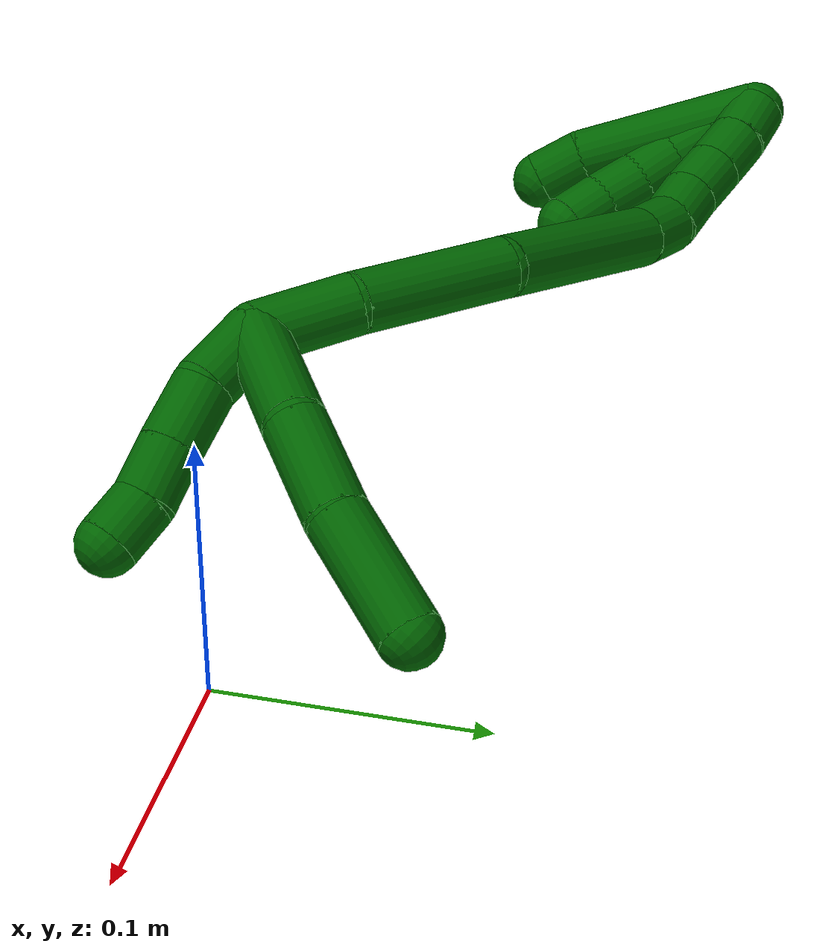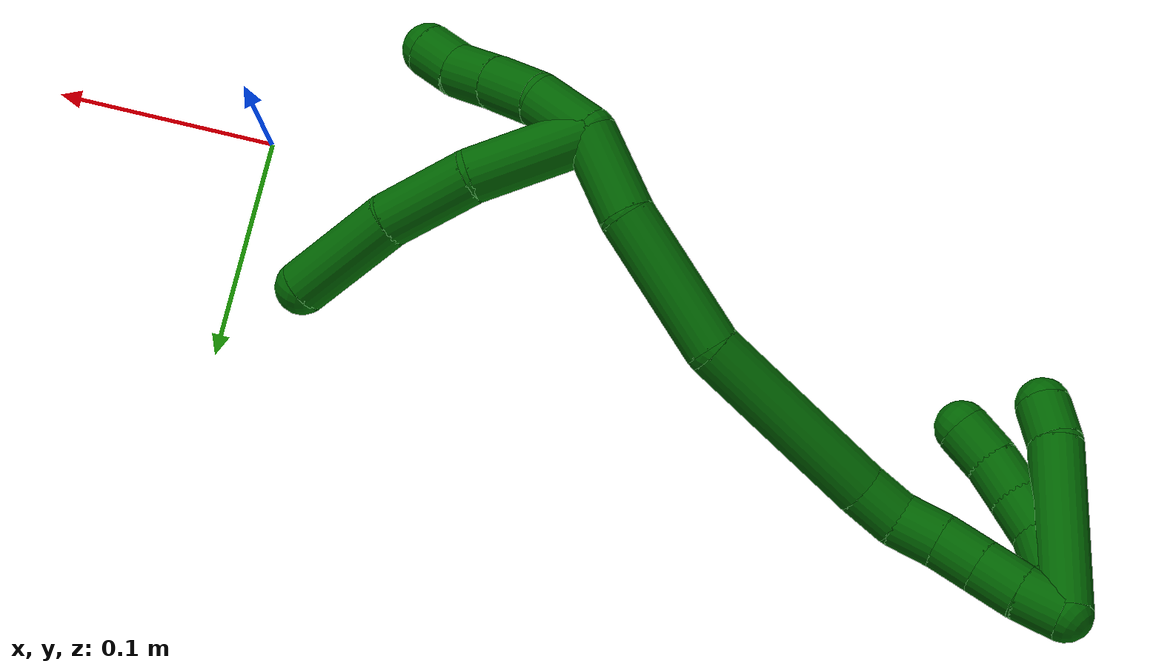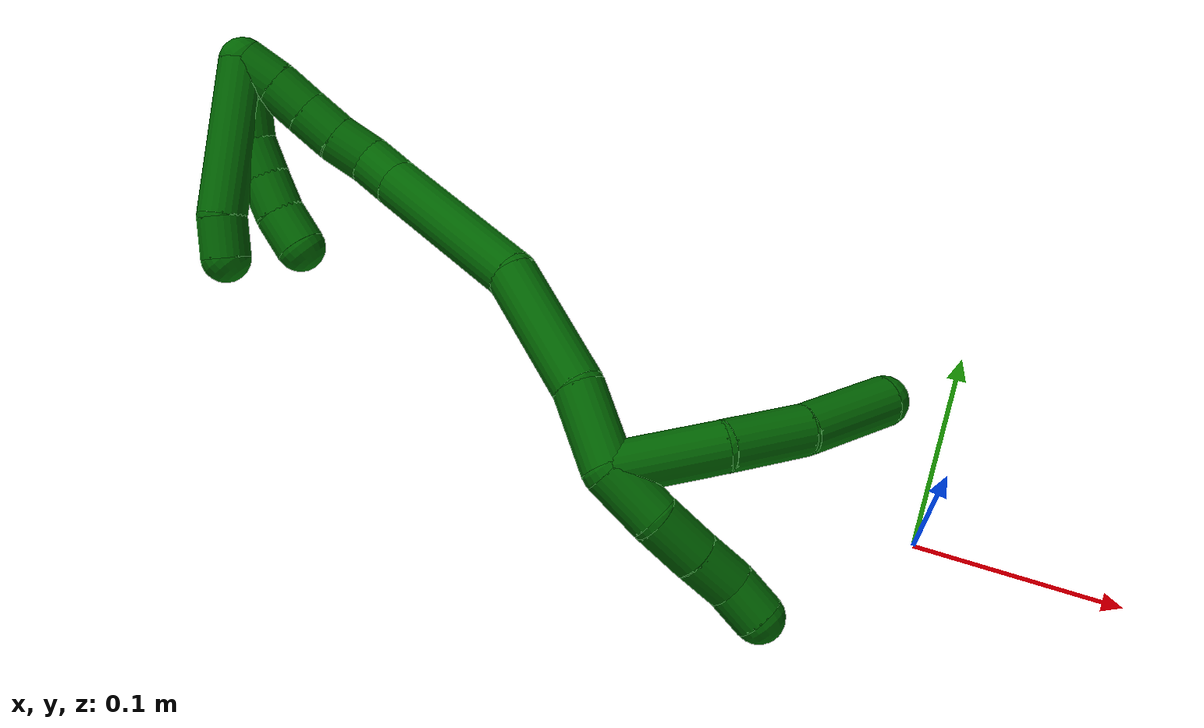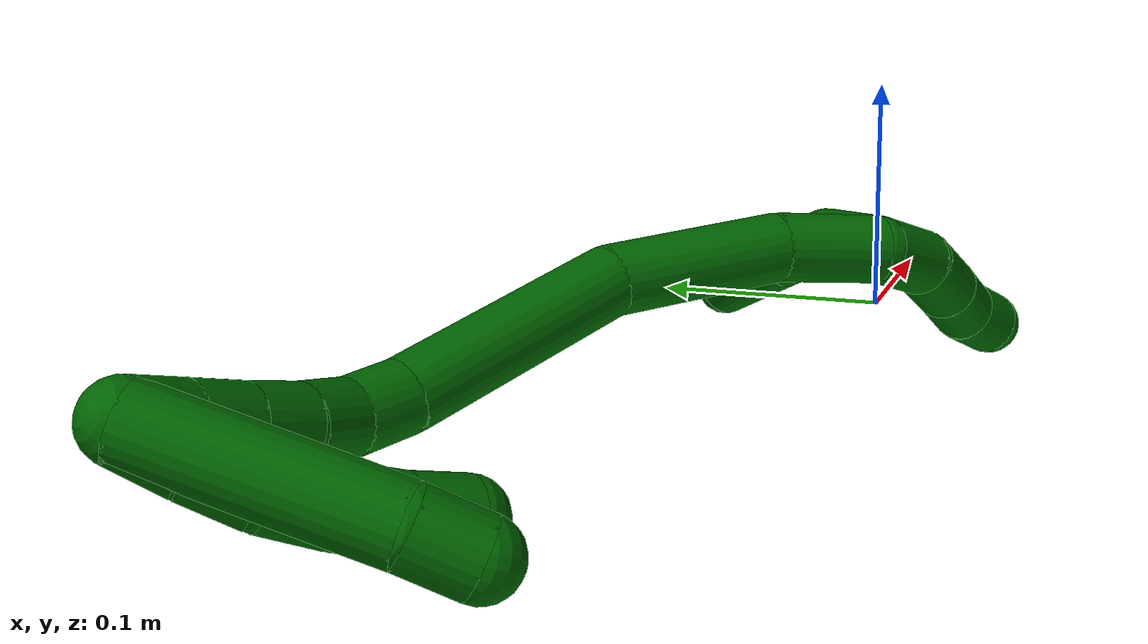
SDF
<sdf version="1.7">
 <world name="default">
  <model name="6">
   <static>0</static>
   <link name="6">
    <collision name="collision-cylinder-e_1_2_8">
     <pose>0.008837 0.022561 -0.012735 -2.0847 0.32872 -0.55358</pose>
     <geometry><cylinder><radius>0.0125</radius><length>0.054745</length></cylinder></geometry>
     <surface>
      <friction><ode><mu>1.16</mu><mu2>1.16</mu2><slip1>0</slip1><slip2>0</slip2></ode></friction>
      <contact><ode><kp>1e+06</kp><kd>1</kd><max_vel>0</max_vel><min_depth>0.001</min_depth></ode></contact>
     </surface>
    </collision>
    <visual name="visual-cylinder-e_1_2_8">
     <pose>0.008837 0.022561 -0.012735 -2.0847 0.32872 -0.55358</pose>
     <geometry><cylinder><radius>0.0125</radius><length>0.054745</length></cylinder></geometry>
     <material><ambient>0 0.392157 0.003922 1</ambient></material>
    </visual>
    <collision name="collision-cylinder-e_2_8_9">
     <pose>0.019396 0.064202 -0.03521 -2.04275 0.080213 -0.130884</pose>
     <geometry><cylinder><radius>0.0125</radius><length>0.042984</length></cylinder></geometry>
     <surface>
      <friction><ode><mu>1.16</mu><mu2>1.16</mu2><slip1>0</slip1><slip2>0</slip2></ode></friction>
      <contact><ode><kp>1e+06</kp><kd>1</kd><max_vel>0</max_vel><min_depth>0.001</min_depth></ode></contact>
     </surface>
    </collision>
    <visual name="visual-cylinder-e_2_8_9">
     <pose>0.019396 0.064202 -0.03521 -2.04275 0.080213 -0.130884</pose>
     <geometry><cylinder><radius>0.0125</radius><length>0.042984</length></cylinder></geometry>
     <material><ambient>0 0.392157 0.003922 1</ambient></material>
    </visual>
    <collision name="collision-cylinder-e_3_9_6">
     <pose>0.020416 0.107862 -0.053806 -1.91663 -0.026866 0.038235</pose>
     <geometry><cylinder><radius>0.0125</radius><length>0.052271</length></cylinder></geometry>
     <surface>
      <friction><ode><mu>1.16</mu><mu2>1.16</mu2><slip1>0</slip1><slip2>0</slip2></ode></friction>
      <contact><ode><kp>1e+06</kp><kd>1</kd><max_vel>0</max_vel><min_depth>0.001</min_depth></ode></contact>
     </surface>
    </collision>
    <visual name="visual-cylinder-e_3_9_6">
     <pose>0.020416 0.107862 -0.053806 -1.91663 -0.026866 0.038235</pose>
     <geometry><cylinder><radius>0.0125</radius><length>0.052271</length></cylinder></geometry>
     <material><ambient>0 0.392157 0.003922 1</ambient></material>
    </visual>
    <collision name="collision-cylinder-e_1_2_10">
     <pose>0.001455 0.000926 -0.01481 -3.07916 0.097708 -2.00488</pose>
     <geometry><cylinder><radius>0.0125</radius><length>0.029821</length></cylinder></geometry>
     <surface>
      <friction><ode><mu>1.16</mu><mu2>1.16</mu2><slip1>0</slip1><slip2>0</slip2></ode></friction>
      <contact><ode><kp>1e+06</kp><kd>1</kd><max_vel>0</max_vel><min_depth>0.001</min_depth></ode></contact>
     </surface>
    </collision>
    <visual name="visual-cylinder-e_1_2_10">
     <pose>0.001455 0.000926 -0.01481 -3.07916 0.097708 -2.00488</pose>
     <geometry><cylinder><radius>0.0125</radius><length>0.029821</length></cylinder></geometry>
     <material><ambient>0 0.392157 0.003922 1</ambient></material>
    </visual>
    <collision name="collision-cylinder-e_2_10_11">
     <pose>0.001394 0.005066 -0.04247 -2.89648 -0.113884 0.866893</pose>
     <geometry><cylinder><radius>0.0125</radius><length>0.026662</length></cylinder></geometry>
     <surface>
      <friction><ode><mu>1.16</mu><mu2>1.16</mu2><slip1>0</slip1><slip2>0</slip2></ode></friction>
      <contact><ode><kp>1e+06</kp><kd>1</kd><max_vel>0</max_vel><min_depth>0.001</min_depth></ode></contact>
     </surface>
    </collision>
    <visual name="visual-cylinder-e_2_10_11">
     <pose>0.001394 0.005066 -0.04247 -2.89648 -0.113884 0.866893</pose>
     <geometry><cylinder><radius>0.0125</radius><length>0.026662</length></cylinder></geometry>
     <material><ambient>0 0.392157 0.003922 1</ambient></material>
    </visual>
    <collision name="collision-cylinder-e_3_11_12">
     <pose>-0.001473 0.011538 -0.066245 -2.85176 -0.118063 0.769558</pose>
     <geometry><cylinder><radius>0.0125</radius><length>0.022965</length></cylinder></geometry>
     <surface>
      <friction><ode><mu>1.16</mu><mu2>1.16</mu2><slip1>0</slip1><slip2>0</slip2></ode></friction>
      <contact><ode><kp>1e+06</kp><kd>1</kd><max_vel>0</max_vel><min_depth>0.001</min_depth></ode></contact>
     </surface>
    </collision>
    <visual name="visual-cylinder-e_3_11_12">
     <pose>-0.001473 0.011538 -0.066245 -2.85176 -0.118063 0.769558</pose>
     <geometry><cylinder><radius>0.0125</radius><length>0.022965</length></cylinder></geometry>
     <material><ambient>0 0.392157 0.003922 1</ambient></material>
    </visual>
    <collision name="collision-cylinder-e_4_12_5">
     <pose>-0.003027 0.015555 -0.087418 -3.06773 -0.019569 0.517794</pose>
     <geometry><cylinder><radius>0.0125</radius><length>0.020552</length></cylinder></geometry>
     <surface>
      <friction><ode><mu>1.16</mu><mu2>1.16</mu2><slip1>0</slip1><slip2>0</slip2></ode></friction>
      <contact><ode><kp>1e+06</kp><kd>1</kd><max_vel>0</max_vel><min_depth>0.001</min_depth></ode></contact>
     </surface>
    </collision>
    <visual name="visual-cylinder-e_4_12_5">
     <pose>-0.003027 0.015555 -0.087418 -3.06773 -0.019569 0.517794</pose>
     <geometry><cylinder><radius>0.0125</radius><length>0.020552</length></cylinder></geometry>
     <material><ambient>0 0.392157 0.003922 1</ambient></material>
    </visual>
    <collision name="collision-cylinder-e_1_2_13">
     <pose>-0.003033 0.00886 0.018008 -0.457251 -0.150012 0.034969</pose>
     <geometry><cylinder><radius>0.0125</radius><length>0.040595</length></cylinder></geometry>
     <surface>
      <friction><ode><mu>1.16</mu><mu2>1.16</mu2><slip1>0</slip1><slip2>0</slip2></ode></friction>
      <contact><ode><kp>1e+06</kp><kd>1</kd><max_vel>0</max_vel><min_depth>0.001</min_depth></ode></contact>
     </surface>
    </collision>
    <visual name="visual-cylinder-e_1_2_13">
     <pose>-0.003033 0.00886 0.018008 -0.457251 -0.150012 0.034969</pose>
     <geometry><cylinder><radius>0.0125</radius><length>0.040595</length></cylinder></geometry>
     <material><ambient>0 0.392157 0.003922 1</ambient></material>
    </visual>
    <collision name="collision-cylinder-e_2_13_14">
     <pose>-0.018081 0.029419 0.06541 -0.378768 -0.362938 0.070313</pose>
     <geometry><cylinder><radius>0.0125</radius><length>0.067683</length></cylinder></geometry>
     <surface>
      <friction><ode><mu>1.16</mu><mu2>1.16</mu2><slip1>0</slip1><slip2>0</slip2></ode></friction>
      <contact><ode><kp>1e+06</kp><kd>1</kd><max_vel>0</max_vel><min_depth>0.001</min_depth></ode></contact>
     </surface>
    </collision>
    <visual name="visual-cylinder-e_2_13_14">
     <pose>-0.018081 0.029419 0.06541 -0.378768 -0.362938 0.070313</pose>
     <geometry><cylinder><radius>0.0125</radius><length>0.067683</length></cylinder></geometry>
     <material><ambient>0 0.392157 0.003922 1</ambient></material>
    </visual>
    <collision name="collision-cylinder-e_3_14_15">
     <pose>-0.056658 0.04727 0.130395 -0.171174 -0.6341 0.056288</pose>
     <geometry><cylinder><radius>0.0125</radius><length>0.089669</length></cylinder></geometry>
     <surface>
      <friction><ode><mu>1.16</mu><mu2>1.16</mu2><slip1>0</slip1><slip2>0</slip2></ode></friction>
      <contact><ode><kp>1e+06</kp><kd>1</kd><max_vel>0</max_vel><min_depth>0.001</min_depth></ode></contact>
     </surface>
    </collision>
    <visual name="visual-cylinder-e_3_14_15">
     <pose>-0.056658 0.04727 0.130395 -0.171174 -0.6341 0.056288</pose>
     <geometry><cylinder><radius>0.0125</radius><length>0.089669</length></cylinder></geometry>
     <material><ambient>0 0.392157 0.003922 1</ambient></material>
    </visual>
    <collision name="collision-cylinder-e_4_15_16">
     <pose>-0.088222 0.05414 0.175099 -0.078549 -0.500711 0.020096</pose>
     <geometry><cylinder><radius>0.0125</radius><length>0.020839</length></cylinder></geometry>
     <surface>
      <friction><ode><mu>1.16</mu><mu2>1.16</mu2><slip1>0</slip1><slip2>0</slip2></ode></friction>
      <contact><ode><kp>1e+06</kp><kd>1</kd><max_vel>0</max_vel><min_depth>0.001</min_depth></ode></contact>
     </surface>
    </collision>
    <visual name="visual-cylinder-e_4_15_16">
     <pose>-0.088222 0.05414 0.175099 -0.078549 -0.500711 0.020096</pose>
     <geometry><cylinder><radius>0.0125</radius><length>0.020839</length></cylinder></geometry>
     <material><ambient>0 0.392157 0.003922 1</ambient></material>
    </visual>
    <collision name="collision-cylinder-e_5_16_17">
     <pose>-0.09608 0.052889 0.193867 0.201039 -0.28207 -0.028638</pose>
     <geometry><cylinder><radius>0.0125</radius><length>0.02052</length></cylinder></geometry>
     <surface>
      <friction><ode><mu>1.16</mu><mu2>1.16</mu2><slip1>0</slip1><slip2>0</slip2></ode></friction>
      <contact><ode><kp>1e+06</kp><kd>1</kd><max_vel>0</max_vel><min_depth>0.001</min_depth></ode></contact>
     </surface>
    </collision>
    <visual name="visual-cylinder-e_5_16_17">
     <pose>-0.09608 0.052889 0.193867 0.201039 -0.28207 -0.028638</pose>
     <geometry><cylinder><radius>0.0125</radius><length>0.02052</length></cylinder></geometry>
     <material><ambient>0 0.392157 0.003922 1</ambient></material>
    </visual>
    <collision name="collision-cylinder-e_6_17_18">
     <pose>-0.100915 0.049841 0.213337 0.109617 -0.197882 -0.010892</pose>
     <geometry><cylinder><radius>0.0125</radius><length>0.02014</length></cylinder></geometry>
     <surface>
      <friction><ode><mu>1.16</mu><mu2>1.16</mu2><slip1>0</slip1><slip2>0</slip2></ode></friction>
      <contact><ode><kp>1e+06</kp><kd>1</kd><max_vel>0</max_vel><min_depth>0.001</min_depth></ode></contact>
     </surface>
    </collision>
    <visual name="visual-cylinder-e_6_17_18">
     <pose>-0.100915 0.049841 0.213337 0.109617 -0.197882 -0.010892</pose>
     <geometry><cylinder><radius>0.0125</radius><length>0.02014</length></cylinder></geometry>
     <material><ambient>0 0.392157 0.003922 1</ambient></material>
    </visual>
    <collision name="collision-cylinder-e_7_18_19">
     <pose>-0.104596 0.047608 0.233192 0.114387 -0.166751 -0.00957</pose>
     <geometry><cylinder><radius>0.0125</radius><length>0.020497</length></cylinder></geometry>
     <surface>
      <friction><ode><mu>1.16</mu><mu2>1.16</mu2><slip1>0</slip1><slip2>0</slip2></ode></friction>
      <contact><ode><kp>1e+06</kp><kd>1</kd><max_vel>0</max_vel><min_depth>0.001</min_depth></ode></contact>
     </surface>
    </collision>
    <visual name="visual-cylinder-e_7_18_19">
     <pose>-0.104596 0.047608 0.233192 0.114387 -0.166751 -0.00957</pose>
     <geometry><cylinder><radius>0.0125</radius><length>0.020497</length></cylinder></geometry>
     <material><ambient>0 0.392157 0.003922 1</ambient></material>
    </visual>
    <collision name="collision-cylinder-e_8_19_1">
     <pose>-0.108082 0.044188 0.252837 0.231701 -0.178942 -0.020879</pose>
     <geometry><cylinder><radius>0.0125</radius><length>0.020057</length></cylinder></geometry>
     <surface>
      <friction><ode><mu>1.16</mu><mu2>1.16</mu2><slip1>0</slip1><slip2>0</slip2></ode></friction>
      <contact><ode><kp>1e+06</kp><kd>1</kd><max_vel>0</max_vel><min_depth>0.001</min_depth></ode></contact>
     </surface>
    </collision>
    <visual name="visual-cylinder-e_8_19_1">
     <pose>-0.108082 0.044188 0.252837 0.231701 -0.178942 -0.020879</pose>
     <geometry><cylinder><radius>0.0125</radius><length>0.020057</length></cylinder></geometry>
     <material><ambient>0 0.392157 0.003922 1</ambient></material>
    </visual>
    <collision name="collision-cylinder-e_1_1_20">
     <pose>-0.113382 0.037343 0.254276 2.6306 -0.359163 -1.21473</pose>
     <geometry><cylinder><radius>0.0125</radius><length>0.02</length></cylinder></geometry>
     <surface>
      <friction><ode><mu>1.16</mu><mu2>1.16</mu2><slip1>0</slip1><slip2>0</slip2></ode></friction>
      <contact><ode><kp>1e+06</kp><kd>1</kd><max_vel>0</max_vel><min_depth>0.001</min_depth></ode></contact>
     </surface>
    </collision>
    <visual name="visual-cylinder-e_1_1_20">
     <pose>-0.113382 0.037343 0.254276 2.6306 -0.359163 -1.21473</pose>
     <geometry><cylinder><radius>0.0125</radius><length>0.02</length></cylinder></geometry>
     <material><ambient>0 0.392157 0.003922 1</ambient></material>
    </visual>
    <collision name="collision-cylinder-e_2_20_21">
     <pose>-0.119836 0.028399 0.237607 2.66716 -0.298351 -1.11236</pose>
     <geometry><cylinder><radius>0.0125</radius><length>0.02</length></cylinder></geometry>
     <surface>
      <friction><ode><mu>1.16</mu><mu2>1.16</mu2><slip1>0</slip1><slip2>0</slip2></ode></friction>
      <contact><ode><kp>1e+06</kp><kd>1</kd><max_vel>0</max_vel><min_depth>0.001</min_depth></ode></contact>
     </surface>
    </collision>
    <visual name="visual-cylinder-e_2_20_21">
     <pose>-0.119836 0.028399 0.237607 2.66716 -0.298351 -1.11236</pose>
     <geometry><cylinder><radius>0.0125</radius><length>0.02</length></cylinder></geometry>
     <material><ambient>0 0.392157 0.003922 1</ambient></material>
    </visual>
    <collision name="collision-cylinder-e_3_21_22">
     <pose>-0.123783 0.021292 0.21954 2.8626 -0.100899 -0.690425</pose>
     <geometry><cylinder><radius>0.0125</radius><length>0.02</length></cylinder></geometry>
     <surface>
      <friction><ode><mu>1.16</mu><mu2>1.16</mu2><slip1>0</slip1><slip2>0</slip2></ode></friction>
      <contact><ode><kp>1e+06</kp><kd>1</kd><max_vel>0</max_vel><min_depth>0.001</min_depth></ode></contact>
     </surface>
    </collision>
    <visual name="visual-cylinder-e_3_21_22">
     <pose>-0.123783 0.021292 0.21954 2.8626 -0.100899 -0.690425</pose>
     <geometry><cylinder><radius>0.0125</radius><length>0.02</length></cylinder></geometry>
     <material><ambient>0 0.392157 0.003922 1</ambient></material>
    </visual>
    <collision name="collision-cylinder-e_4_22_23">
     <pose>-0.124846 0.015659 0.200404 2.84805 -0.005563 -0.037622</pose>
     <geometry><cylinder><radius>0.0125</radius><length>0.02</length></cylinder></geometry>
     <surface>
      <friction><ode><mu>1.16</mu><mu2>1.16</mu2><slip1>0</slip1><slip2>0</slip2></ode></friction>
      <contact><ode><kp>1e+06</kp><kd>1</kd><max_vel>0</max_vel><min_depth>0.001</min_depth></ode></contact>
     </surface>
    </collision>
    <visual name="visual-cylinder-e_4_22_23">
     <pose>-0.124846 0.015659 0.200404 2.84805 -0.005563 -0.037622</pose>
     <geometry><cylinder><radius>0.0125</radius><length>0.02</length></cylinder></geometry>
     <material><ambient>0 0.392157 0.003922 1</ambient></material>
    </visual>
    <collision name="collision-cylinder-e_5_23_4">
     <pose>-0.123768 0.01101 0.181052 2.96397 0.113576 1.13639</pose>
     <geometry><cylinder><radius>0.0125</radius><length>0.02</length></cylinder></geometry>
     <surface>
      <friction><ode><mu>1.16</mu><mu2>1.16</mu2><slip1>0</slip1><slip2>0</slip2></ode></friction>
      <contact><ode><kp>1e+06</kp><kd>1</kd><max_vel>0</max_vel><min_depth>0.001</min_depth></ode></contact>
     </surface>
    </collision>
    <visual name="visual-cylinder-e_5_23_4">
     <pose>-0.123768 0.01101 0.181052 2.96397 0.113576 1.13639</pose>
     <geometry><cylinder><radius>0.0125</radius><length>0.02</length></cylinder></geometry>
     <material><ambient>0 0.392157 0.003922 1</ambient></material>
    </visual>
    <collision name="collision-cylinder-e_1_1_24">
     <pose>-0.120355 0.015868 0.234694 2.38768 -0.268875 -0.658425</pose>
     <geometry><cylinder><radius>0.0125</radius><length>0.078961</length></cylinder></geometry>
     <surface>
      <friction><ode><mu>1.16</mu><mu2>1.16</mu2><slip1>0</slip1><slip2>0</slip2></ode></friction>
      <contact><ode><kp>1e+06</kp><kd>1</kd><max_vel>0</max_vel><min_depth>0.001</min_depth></ode></contact>
     </surface>
    </collision>
    <visual name="visual-cylinder-e_1_1_24">
     <pose>-0.120355 0.015868 0.234694 2.38768 -0.268875 -0.658425</pose>
     <geometry><cylinder><radius>0.0125</radius><length>0.078961</length></cylinder></geometry>
     <material><ambient>0 0.392157 0.003922 1</ambient></material>
    </visual>
    <collision name="collision-cylinder-e_2_24_3">
     <pose>-0.133864 -0.015006 0.198098 2.64274 -0.291287 -1.04491</pose>
     <geometry><cylinder><radius>0.0125</radius><length>0.021039</length></cylinder></geometry>
     <surface>
      <friction><ode><mu>1.16</mu><mu2>1.16</mu2><slip1>0</slip1><slip2>0</slip2></ode></friction>
      <contact><ode><kp>1e+06</kp><kd>1</kd><max_vel>0</max_vel><min_depth>0.001</min_depth></ode></contact>
     </surface>
    </collision>
    <visual name="visual-cylinder-e_2_24_3">
     <pose>-0.133864 -0.015006 0.198098 2.64274 -0.291287 -1.04491</pose>
     <geometry><cylinder><radius>0.0125</radius><length>0.021039</length></cylinder></geometry>
     <material><ambient>0 0.392157 0.003922 1</ambient></material>
    </visual>
    <collision name="collision-sphere-3">
     <pose>-0.136885 -0.019826 0.18925 0 -0 0</pose>
     <geometry><sphere><radius>0.0125</radius></sphere></geometry>
     <surface>
      <friction><ode><mu>1.16</mu><mu2>1.16</mu2><slip1>0</slip1><slip2>0</slip2></ode></friction>
      <contact><ode><kp>1e+06</kp><kd>1</kd><max_vel>0</max_vel><min_depth>0.001</min_depth></ode></contact>
     </surface>
    </collision>
    <visual name="visual-sphere-3">
     <pose>-0.136885 -0.019826 0.18925 0 -0 0</pose>
     <geometry><sphere><radius>0.0125</radius></sphere></geometry>
     <material><ambient>0 0.392157 0.003922 1</ambient></material>
    </visual>
    <collision name="collision-sphere-24">
     <pose>-0.130843 -0.010185 0.206946 0 -0 0</pose>
     <geometry><sphere><radius>0.0125</radius></sphere></geometry>
     <surface>
      <friction><ode><mu>1.16</mu><mu2>1.16</mu2><slip1>0</slip1><slip2>0</slip2></ode></friction>
      <contact><ode><kp>1e+06</kp><kd>1</kd><max_vel>0</max_vel><min_depth>0.001</min_depth></ode></contact>
     </surface>
    </collision>
    <visual name="visual-sphere-24">
     <pose>-0.130843 -0.010185 0.206946 0 -0 0</pose>
     <geometry><sphere><radius>0.0125</radius></sphere></geometry>
     <material><ambient>0 0.392157 0.003922 1</ambient></material>
    </visual>
    <collision name="collision-sphere-4">
     <pose>-0.122635 0.009254 0.171273 0 -0 0</pose>
     <geometry><sphere><radius>0.0125</radius></sphere></geometry>
     <surface>
      <friction><ode><mu>1.16</mu><mu2>1.16</mu2><slip1>0</slip1><slip2>0</slip2></ode></friction>
      <contact><ode><kp>1e+06</kp><kd>1</kd><max_vel>0</max_vel><min_depth>0.001</min_depth></ode></contact>
     </surface>
    </collision>
    <visual name="visual-sphere-4">
     <pose>-0.122635 0.009254 0.171273 0 -0 0</pose>
     <geometry><sphere><radius>0.0125</radius></sphere></geometry>
     <material><ambient>0 0.392157 0.003922 1</ambient></material>
    </visual>
    <collision name="collision-sphere-23">
     <pose>-0.124902 0.012766 0.190832 0 -0 0</pose>
     <geometry><sphere><radius>0.0125</radius></sphere></geometry>
     <surface>
      <friction><ode><mu>1.16</mu><mu2>1.16</mu2><slip1>0</slip1><slip2>0</slip2></ode></friction>
      <contact><ode><kp>1e+06</kp><kd>1</kd><max_vel>0</max_vel><min_depth>0.001</min_depth></ode></contact>
     </surface>
    </collision>
    <visual name="visual-sphere-23">
     <pose>-0.124902 0.012766 0.190832 0 -0 0</pose>
     <geometry><sphere><radius>0.0125</radius></sphere></geometry>
     <material><ambient>0 0.392157 0.003922 1</ambient></material>
    </visual>
    <collision name="collision-sphere-22">
     <pose>-0.12479 0.018552 0.209976 0 -0 0</pose>
     <geometry><sphere><radius>0.0125</radius></sphere></geometry>
     <surface>
      <friction><ode><mu>1.16</mu><mu2>1.16</mu2><slip1>0</slip1><slip2>0</slip2></ode></friction>
      <contact><ode><kp>1e+06</kp><kd>1</kd><max_vel>0</max_vel><min_depth>0.001</min_depth></ode></contact>
     </surface>
    </collision>
    <visual name="visual-sphere-22">
     <pose>-0.12479 0.018552 0.209976 0 -0 0</pose>
     <geometry><sphere><radius>0.0125</radius></sphere></geometry>
     <material><ambient>0 0.392157 0.003922 1</ambient></material>
    </visual>
    <collision name="collision-sphere-21">
     <pose>-0.122776 0.024032 0.229105 0 -0 0</pose>
     <geometry><sphere><radius>0.0125</radius></sphere></geometry>
     <surface>
      <friction><ode><mu>1.16</mu><mu2>1.16</mu2><slip1>0</slip1><slip2>0</slip2></ode></friction>
      <contact><ode><kp>1e+06</kp><kd>1</kd><max_vel>0</max_vel><min_depth>0.001</min_depth></ode></contact>
     </surface>
    </collision>
    <visual name="visual-sphere-21">
     <pose>-0.122776 0.024032 0.229105 0 -0 0</pose>
     <geometry><sphere><radius>0.0125</radius></sphere></geometry>
     <material><ambient>0 0.392157 0.003922 1</ambient></material>
    </visual>
    <collision name="collision-sphere-20">
     <pose>-0.116897 0.032765 0.24611 0 -0 0</pose>
     <geometry><sphere><radius>0.0125</radius></sphere></geometry>
     <surface>
      <friction><ode><mu>1.16</mu><mu2>1.16</mu2><slip1>0</slip1><slip2>0</slip2></ode></friction>
      <contact><ode><kp>1e+06</kp><kd>1</kd><max_vel>0</max_vel><min_depth>0.001</min_depth></ode></contact>
     </surface>
    </collision>
    <visual name="visual-sphere-20">
     <pose>-0.116897 0.032765 0.24611 0 -0 0</pose>
     <geometry><sphere><radius>0.0125</radius></sphere></geometry>
     <material><ambient>0 0.392157 0.003922 1</ambient></material>
    </visual>
    <collision name="collision-sphere-11">
     <pose>-0.000121 0.00828 -0.055319 0 -0 0</pose>
     <geometry><sphere><radius>0.0125</radius></sphere></geometry>
     <surface>
      <friction><ode><mu>1.16</mu><mu2>1.16</mu2><slip1>0</slip1><slip2>0</slip2></ode></friction>
      <contact><ode><kp>1e+06</kp><kd>1</kd><max_vel>0</max_vel><min_depth>0.001</min_depth></ode></contact>
     </surface>
    </collision>
    <visual name="visual-sphere-11">
     <pose>-0.000121 0.00828 -0.055319 0 -0 0</pose>
     <geometry><sphere><radius>0.0125</radius></sphere></geometry>
     <material><ambient>0 0.392157 0.003922 1</ambient></material>
    </visual>
    <collision name="collision-sphere-10">
     <pose>0.002909 0.001852 -0.029621 0 -0 0</pose>
     <geometry><sphere><radius>0.0125</radius></sphere></geometry>
     <surface>
      <friction><ode><mu>1.16</mu><mu2>1.16</mu2><slip1>0</slip1><slip2>0</slip2></ode></friction>
      <contact><ode><kp>1e+06</kp><kd>1</kd><max_vel>0</max_vel><min_depth>0.001</min_depth></ode></contact>
     </surface>
    </collision>
    <visual name="visual-sphere-10">
     <pose>0.002909 0.001852 -0.029621 0 -0 0</pose>
     <geometry><sphere><radius>0.0125</radius></sphere></geometry>
     <material><ambient>0 0.392157 0.003922 1</ambient></material>
    </visual>
    <collision name="collision-sphere-6">
     <pose>0.019713 0.132442 -0.062662 0 -0 0</pose>
     <geometry><sphere><radius>0.0125</radius></sphere></geometry>
     <surface>
      <friction><ode><mu>1.16</mu><mu2>1.16</mu2><slip1>0</slip1><slip2>0</slip2></ode></friction>
      <contact><ode><kp>1e+06</kp><kd>1</kd><max_vel>0</max_vel><min_depth>0.001</min_depth></ode></contact>
     </surface>
    </collision>
    <visual name="visual-sphere-6">
     <pose>0.019713 0.132442 -0.062662 0 -0 0</pose>
     <geometry><sphere><radius>0.0125</radius></sphere></geometry>
     <material><ambient>0 0.392157 0.003922 1</ambient></material>
    </visual>
    <collision name="collision-sphere-9">
     <pose>0.021118 0.083283 -0.04495 0 -0 0</pose>
     <geometry><sphere><radius>0.0125</radius></sphere></geometry>
     <surface>
      <friction><ode><mu>1.16</mu><mu2>1.16</mu2><slip1>0</slip1><slip2>0</slip2></ode></friction>
      <contact><ode><kp>1e+06</kp><kd>1</kd><max_vel>0</max_vel><min_depth>0.001</min_depth></ode></contact>
     </surface>
    </collision>
    <visual name="visual-sphere-9">
     <pose>0.021118 0.083283 -0.04495 0 -0 0</pose>
     <geometry><sphere><radius>0.0125</radius></sphere></geometry>
     <material><ambient>0 0.392157 0.003922 1</ambient></material>
    </visual>
    <collision name="collision-sphere-2">
     <geometry><sphere><radius>0.0125</radius></sphere></geometry>
     <surface>
      <friction><ode><mu>1.16</mu><mu2>1.16</mu2><slip1>0</slip1><slip2>0</slip2></ode></friction>
      <contact><ode><kp>1e+06</kp><kd>1</kd><max_vel>0</max_vel><min_depth>0.001</min_depth></ode></contact>
     </surface>
    </collision>
    <visual name="visual-sphere-2">
     <geometry><sphere><radius>0.0125</radius></sphere></geometry>
     <material><ambient>0 0.392157 0.003922 1</ambient></material>
    </visual>
    <collision name="collision-sphere-19">
     <pose>-0.106297 0.046454 0.243232 0 -0 0</pose>
     <geometry><sphere><radius>0.0125</radius></sphere></geometry>
     <surface>
      <friction><ode><mu>1.16</mu><mu2>1.16</mu2><slip1>0</slip1><slip2>0</slip2></ode></friction>
      <contact><ode><kp>1e+06</kp><kd>1</kd><max_vel>0</max_vel><min_depth>0.001</min_depth></ode></contact>
     </surface>
    </collision>
    <visual name="visual-sphere-19">
     <pose>-0.106297 0.046454 0.243232 0 -0 0</pose>
     <geometry><sphere><radius>0.0125</radius></sphere></geometry>
     <material><ambient>0 0.392157 0.003922 1</ambient></material>
    </visual>
    <collision name="collision-sphere-8">
     <pose>0.017673 0.045121 -0.025471 0 -0 0</pose>
     <geometry><sphere><radius>0.0125</radius></sphere></geometry>
     <surface>
      <friction><ode><mu>1.16</mu><mu2>1.16</mu2><slip1>0</slip1><slip2>0</slip2></ode></friction>
      <contact><ode><kp>1e+06</kp><kd>1</kd><max_vel>0</max_vel><min_depth>0.001</min_depth></ode></contact>
     </surface>
    </collision>
    <visual name="visual-sphere-8">
     <pose>0.017673 0.045121 -0.025471 0 -0 0</pose>
     <geometry><sphere><radius>0.0125</radius></sphere></geometry>
     <material><ambient>0 0.392157 0.003922 1</ambient></material>
    </visual>
    <collision name="collision-sphere-12">
     <pose>-0.002826 0.014797 -0.077172 0 -0 0</pose>
     <geometry><sphere><radius>0.0125</radius></sphere></geometry>
     <surface>
      <friction><ode><mu>1.16</mu><mu2>1.16</mu2><slip1>0</slip1><slip2>0</slip2></ode></friction>
      <contact><ode><kp>1e+06</kp><kd>1</kd><max_vel>0</max_vel><min_depth>0.001</min_depth></ode></contact>
     </surface>
    </collision>
    <visual name="visual-sphere-12">
     <pose>-0.002826 0.014797 -0.077172 0 -0 0</pose>
     <geometry><sphere><radius>0.0125</radius></sphere></geometry>
     <material><ambient>0 0.392157 0.003922 1</ambient></material>
    </visual>
    <collision name="collision-sphere-5">
     <pose>-0.003228 0.016313 -0.097665 0 -0 0</pose>
     <geometry><sphere><radius>0.0125</radius></sphere></geometry>
     <surface>
      <friction><ode><mu>1.16</mu><mu2>1.16</mu2><slip1>0</slip1><slip2>0</slip2></ode></friction>
      <contact><ode><kp>1e+06</kp><kd>1</kd><max_vel>0</max_vel><min_depth>0.001</min_depth></ode></contact>
     </surface>
    </collision>
    <visual name="visual-sphere-5">
     <pose>-0.003228 0.016313 -0.097665 0 -0 0</pose>
     <geometry><sphere><radius>0.0125</radius></sphere></geometry>
     <material><ambient>0 0.392157 0.003922 1</ambient></material>
    </visual>
    <collision name="collision-sphere-13">
     <pose>-0.006067 0.017721 0.036015 0 -0 0</pose>
     <geometry><sphere><radius>0.0125</radius></sphere></geometry>
     <surface>
      <friction><ode><mu>1.16</mu><mu2>1.16</mu2><slip1>0</slip1><slip2>0</slip2></ode></friction>
      <contact><ode><kp>1e+06</kp><kd>1</kd><max_vel>0</max_vel><min_depth>0.001</min_depth></ode></contact>
     </surface>
    </collision>
    <visual name="visual-sphere-13">
     <pose>-0.006067 0.017721 0.036015 0 -0 0</pose>
     <geometry><sphere><radius>0.0125</radius></sphere></geometry>
     <material><ambient>0 0.392157 0.003922 1</ambient></material>
    </visual>
    <collision name="collision-sphere-14">
     <pose>-0.030096 0.041118 0.094804 0 -0 0</pose>
     <geometry><sphere><radius>0.0125</radius></sphere></geometry>
     <surface>
      <friction><ode><mu>1.16</mu><mu2>1.16</mu2><slip1>0</slip1><slip2>0</slip2></ode></friction>
      <contact><ode><kp>1e+06</kp><kd>1</kd><max_vel>0</max_vel><min_depth>0.001</min_depth></ode></contact>
     </surface>
    </collision>
    <visual name="visual-sphere-14">
     <pose>-0.030096 0.041118 0.094804 0 -0 0</pose>
     <geometry><sphere><radius>0.0125</radius></sphere></geometry>
     <material><ambient>0 0.392157 0.003922 1</ambient></material>
    </visual>
    <collision name="collision-sphere-15">
     <pose>-0.08322 0.053423 0.165986 0 -0 0</pose>
     <geometry><sphere><radius>0.0125</radius></sphere></geometry>
     <surface>
      <friction><ode><mu>1.16</mu><mu2>1.16</mu2><slip1>0</slip1><slip2>0</slip2></ode></friction>
      <contact><ode><kp>1e+06</kp><kd>1</kd><max_vel>0</max_vel><min_depth>0.001</min_depth></ode></contact>
     </surface>
    </collision>
    <visual name="visual-sphere-15">
     <pose>-0.08322 0.053423 0.165986 0 -0 0</pose>
     <geometry><sphere><radius>0.0125</radius></sphere></geometry>
     <material><ambient>0 0.392157 0.003922 1</ambient></material>
    </visual>
    <collision name="collision-sphere-16">
     <pose>-0.093224 0.054857 0.184211 0 -0 0</pose>
     <geometry><sphere><radius>0.0125</radius></sphere></geometry>
     <surface>
      <friction><ode><mu>1.16</mu><mu2>1.16</mu2><slip1>0</slip1><slip2>0</slip2></ode></friction>
      <contact><ode><kp>1e+06</kp><kd>1</kd><max_vel>0</max_vel><min_depth>0.001</min_depth></ode></contact>
     </surface>
    </collision>
    <visual name="visual-sphere-16">
     <pose>-0.093224 0.054857 0.184211 0 -0 0</pose>
     <geometry><sphere><radius>0.0125</radius></sphere></geometry>
     <material><ambient>0 0.392157 0.003922 1</ambient></material>
    </visual>
    <collision name="collision-sphere-17">
     <pose>-0.098936 0.050921 0.203523 0 -0 0</pose>
     <geometry><sphere><radius>0.0125</radius></sphere></geometry>
     <surface>
      <friction><ode><mu>1.16</mu><mu2>1.16</mu2><slip1>0</slip1><slip2>0</slip2></ode></friction>
      <contact><ode><kp>1e+06</kp><kd>1</kd><max_vel>0</max_vel><min_depth>0.001</min_depth></ode></contact>
     </surface>
    </collision>
    <visual name="visual-sphere-17">
     <pose>-0.098936 0.050921 0.203523 0 -0 0</pose>
     <geometry><sphere><radius>0.0125</radius></sphere></geometry>
     <material><ambient>0 0.392157 0.003922 1</ambient></material>
    </visual>
    <collision name="collision-sphere-18">
     <pose>-0.102895 0.048761 0.223152 0 -0 0</pose>
     <geometry><sphere><radius>0.0125</radius></sphere></geometry>
     <surface>
      <friction><ode><mu>1.16</mu><mu2>1.16</mu2><slip1>0</slip1><slip2>0</slip2></ode></friction>
      <contact><ode><kp>1e+06</kp><kd>1</kd><max_vel>0</max_vel><min_depth>0.001</min_depth></ode></contact>
     </surface>
    </collision>
    <visual name="visual-sphere-18">
     <pose>-0.102895 0.048761 0.223152 0 -0 0</pose>
     <geometry><sphere><radius>0.0125</radius></sphere></geometry>
     <material><ambient>0 0.392157 0.003922 1</ambient></material>
    </visual>
    <collision name="collision-sphere-1">
     <pose>-0.109867 0.041922 0.262442 0 -0 0</pose>
     <geometry><sphere><radius>0.0125</radius></sphere></geometry>
     <surface>
      <friction><ode><mu>1.16</mu><mu2>1.16</mu2><slip1>0</slip1><slip2>0</slip2></ode></friction>
      <contact><ode><kp>1e+06</kp><kd>1</kd><max_vel>0</max_vel><min_depth>0.001</min_depth></ode></contact>
     </surface>
    </collision>
    <visual name="visual-sphere-1">
     <pose>-0.109867 0.041922 0.262442 0 -0 0</pose>
     <geometry><sphere><radius>0.0125</radius></sphere></geometry>
     <material><ambient>0 0.392157 0.003922 1</ambient></material>
    </visual>
    <inertial>
     <pose>-0.051526 0.033681 0.09769 0 -0 0</pose>
     <mass>0.75</mass>
     <inertia><ixx>0.000126</ixx><ixy>0</ixy><ixz>0</ixz><iyy>3.9e-05</iyy><iyz>0</iyz><izz>3e-05</izz></inertia>
    </inertial>
   </link>
   <pose>-0.142158 -0.025109 0.05547 -0.631318 -1.07046 0.152764</pose>
  </model>
 </world>
</sdf>
